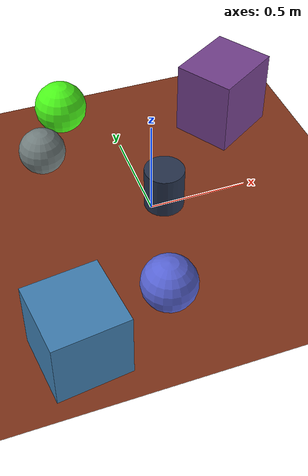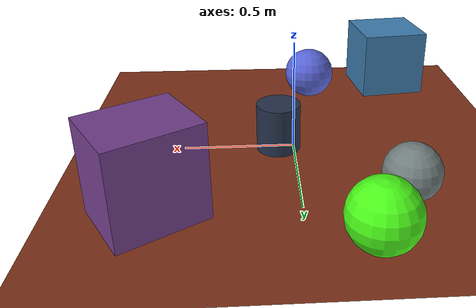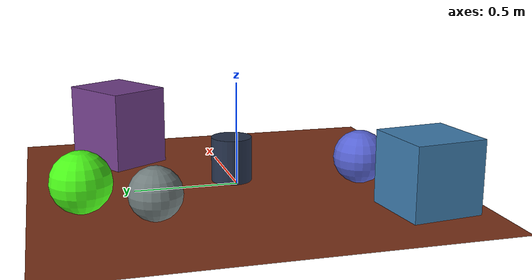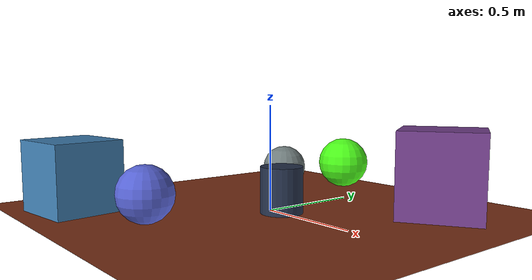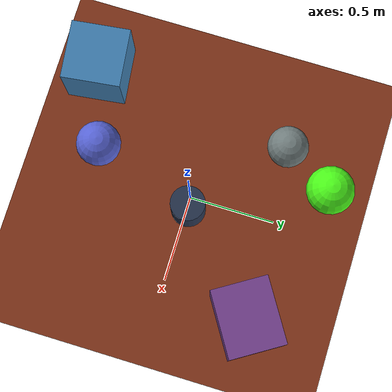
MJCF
<mujoco>
   <asset>
<texture type="skybox" builtin="gradient" rgb1="0.8 0.9 1.0" rgb2="0.0 0.9 0.5" width="256" height="256"/>
<texture name="gradient_0" builtin="gradient" rgb1="0.8 0.3 0.8" rgb2="0.1 0.2 0.3" width="200" height="200"/>
<texture name="gradient_1" builtin="gradient" rgb1="0.3 0.3 0.5" rgb2="0.6 0.7 0.5" width="200" height="200"/>
<texture name="checker_2" builtin="checker" rgb1="0.2 0.2 0.6" rgb2="0.1 0.2 0.0" width="200" height="200"/>
<texture name="flat_3" builtin="flat" rgb1="0.3 1.0 0.1" rgb2="0.3 1.0 0.1"  width="200" height="200"/>
<texture name="checker_4" builtin="checker" rgb1="0.2 0.6 0.4" rgb2="0.3 0.4 1.0" width="200" height="200"/>
<texture name="gradient_5" builtin="gradient" rgb1="0.3 0.5 0.8" rgb2="0.4 0.3 0.9" width="200" height="200"/><material name="gradient_0_mat" reflectance="0" texture="gradient_0" texuniform="true"/>
<material name="gradient_1_mat" reflectance="0" texture="gradient_1" texuniform="true"/>
<material name="checker_2_mat" reflectance="0" texrepeat="3 3" texture="checker_2" texuniform="false" />
<material name="flat_3_mat" reflectance="0" texture="flat_3" texuniform="true"/>
<material name="checker_4_mat" reflectance="0" texrepeat="5 5" texture="checker_4" texuniform="false" />
<material name="gradient_5_mat" reflectance="0" texture="gradient_5" texuniform="true"/>
   </asset>

   <worldbody>
      <light diffuse=".9 .9 .9" pos="0 0 3" dir="0 0 -1"/>
     <geom type="plane" size="1 1 0.1" rgba="0.5 0.2 0.1 1"/>
<geom type="box" pos="0.59 0.51 0.2" size="0.19 0.16 0.2" material="gradient_0_mat" euler="0 0 32" />
<geom type="sphere" pos="-0.43 0.46 0.12" size="0.12 0.12 0.12" material="gradient_1_mat" euler="0 0 2" />
<geom type="cylinder" pos="0.07 0.01 0.11" size="0.1 0.11 0.11" material="checker_2_mat" euler="0 0 5" />
<geom type="sphere" pos="-0.25 0.76 0.14" size="0.14 0.14 0.14" material="flat_3_mat" euler="0 0 6" />
<geom type="box" pos="-0.58 -0.73 0.17" size="0.17 0.17 0.17" material="checker_4_mat" euler="0 0 7" />
<geom type="sphere" pos="-0.13 -0.59 0.13" size="0.13 0.13 0.13" material="gradient_5_mat" euler="0 0 3" /><camera euler="60 0 180" fovy="60" name="camera1" pos="-0.2 -1.5 1"></camera>   </worldbody>
</mujoco>
